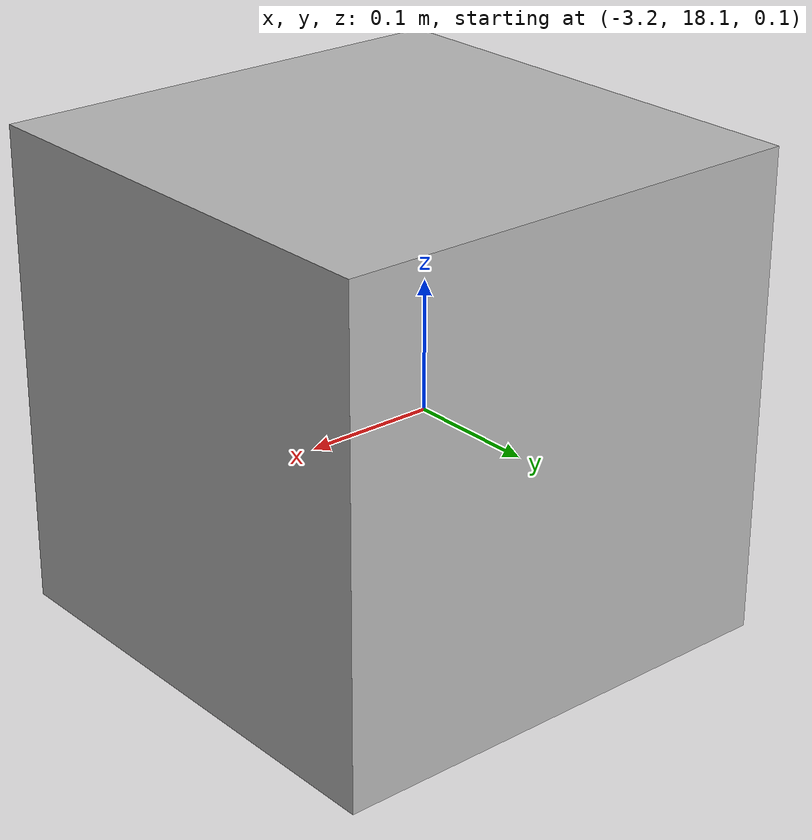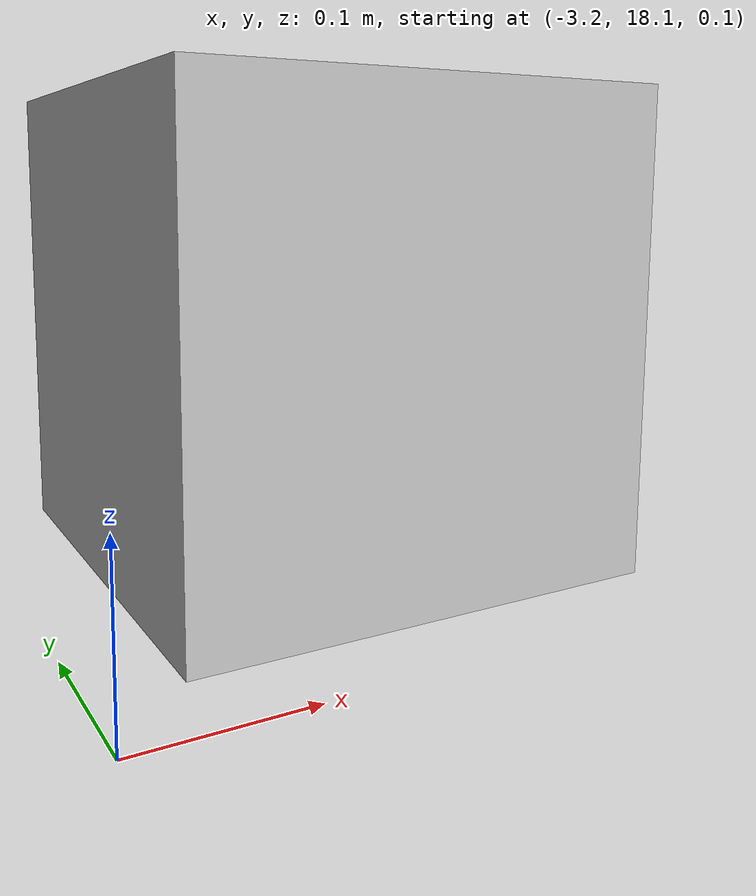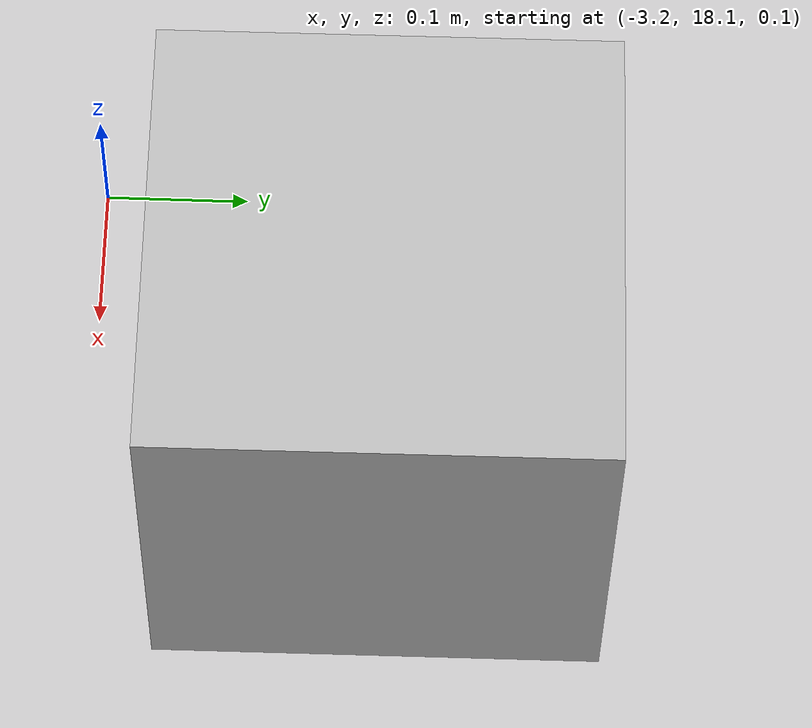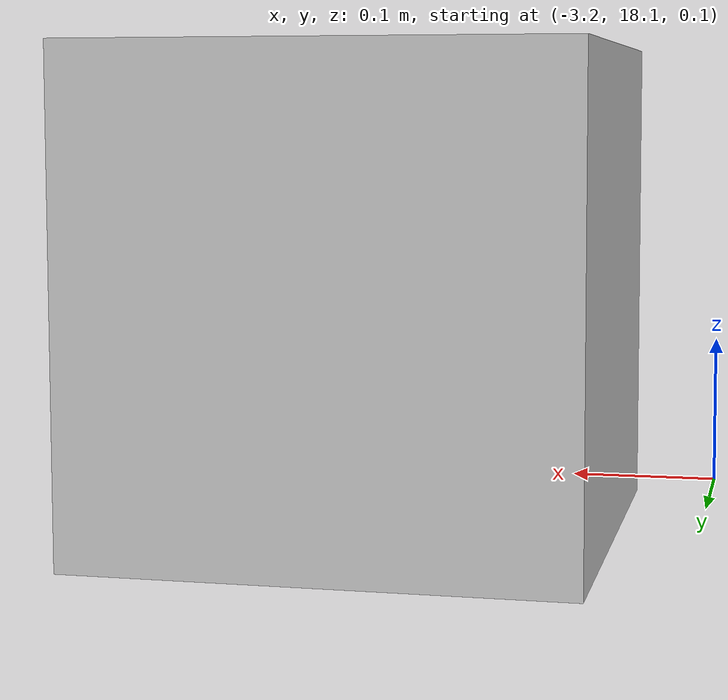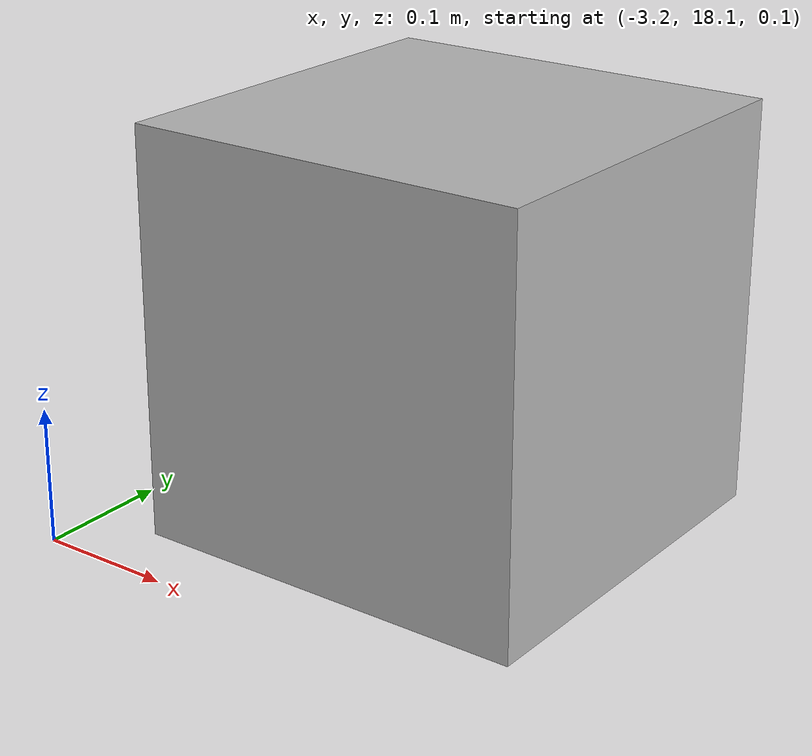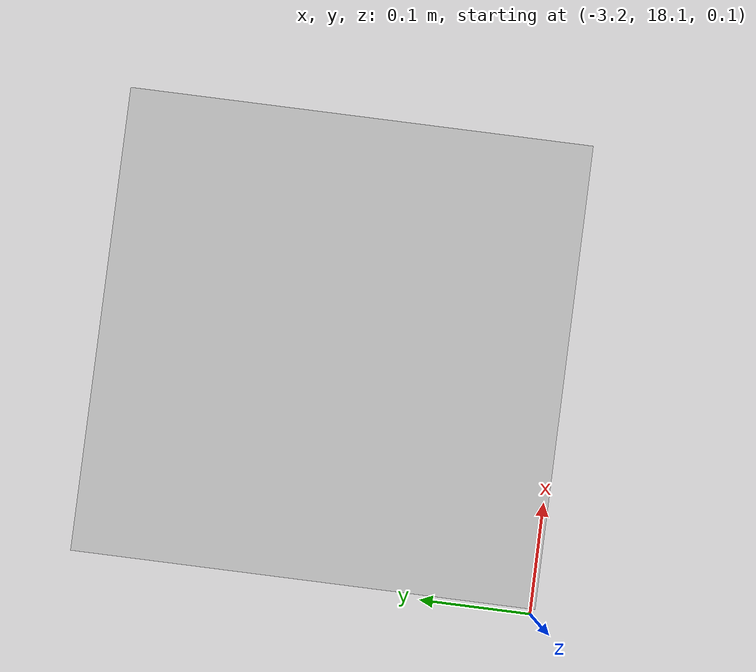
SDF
<?xml version="1.0"?>
<sdf version="1.5">
    <model name="5cube">
        <static>true</static>
        <link name="link">

             <collision name="collision5">
                <pose>-3 18.3 0.1 0 0 0</pose>
                <geometry>
                    <mesh>
                        <uri>model://5cube/meshes/cube.dae</uri>
                    </mesh>
                </geometry>
            </collision>
            <visual name="visual5">

              <pose>-3 18.3 0.1 0 0 0</pose>
              <geometry>
              <mesh>
                 <uri>model://5cube/meshes/cube_green.dae</uri>
              </mesh>
              </geometry>

              <material>
                  <script>
                      <uri>model://5cube/materials/scripts</uri>
                      <uri>model://5cube/materials/textures</uri>
                      <name>cubeMat/Diffuse</name>
                  </script>
              </material>
             </visual>
        </link>
    </model>
</sdf>
